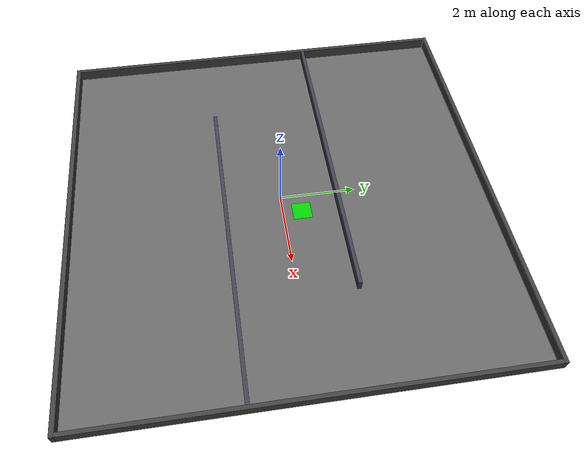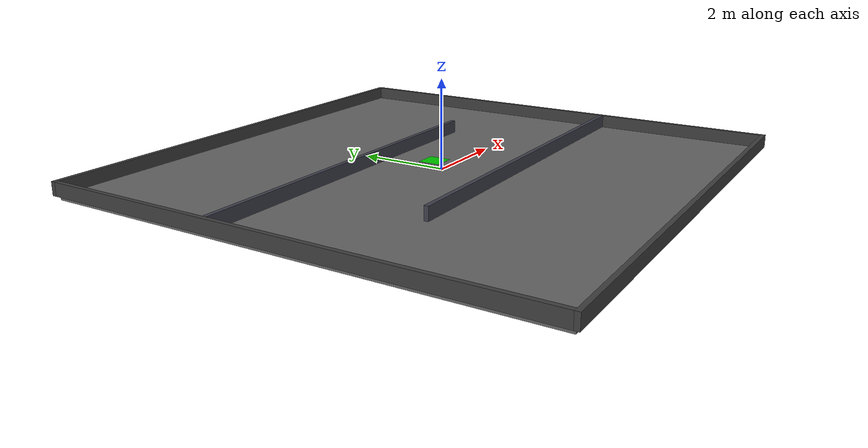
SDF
<?xml version="1.0"?>
<sdf version="1.6">

<world name="field_simplified">

  <!--太阳 平行光-->
  <light name="sun" type="directional">
    <cast_shadows>true</cast_shadows>
    <pose>0 0 10 0 0 0</pose>
    <diffuse>0.8 0.8 0.8 1</diffuse>
    <specular>0.2 0.2 0.2 1</specular>
    <direction>-0.5 0.1 -0.9</direction>
  </light>

  <!--场地地板 11m x 11m 顶面正好在z=0-->
  <model name="field_floor">
    <static>true</static>
    <pose>0 0 -0.05 0 0 0</pose>
    <link name="floor_link">

      <visual name="floor_visual">
        <geometry>
          <box><size>11 11 0.1</size></box>
        </geometry>
        <material>
          <ambient>0.4 0.4 0.4 1</ambient>
          <diffuse>0.4 0.4 0.4 1</diffuse>
        </material>
      </visual>

      <collision name="floor_collision">
        <geometry>
          <box><size>11 11 0.1</size></box>
        </geometry>
      </collision>

    </link>
  </model>

  <!--建造格1 0.5m x 0.5m 绿色标识 只有visual没有collision 机器人可以直接压过-->
  <model name="build_slot_1">
    <static>true</static>
    <pose>0.5 0.5 0.001 0 0 0</pose>
    <link name="slot_link">

      <visual name="slot_visual">
        <geometry>
          <box><size>0.5 0.5 0.002</size></box>
        </geometry>
        <material>
          <ambient>0 0.8 0 1</ambient>
          <diffuse>0 0.8 0 1</diffuse>
        </material>
      </visual>

    </link>
  </model>

  <!--封闭围栏 四面墙 内侧面正好在±5.5 有collision是真实障碍-->
  <model name="field_fence">
    <static>true</static>
    <pose>0 0 0 0 0 0</pose>

    <link name="wall_north_link">
      <pose>0 5.55 0.15 0 0 0</pose>
      <visual name="wall_north_visual">
        <geometry><box><size>11.2 0.1 0.3</size></box></geometry>
        <material>
          <ambient>0.25 0.25 0.25 1</ambient>
          <diffuse>0.25 0.25 0.25 1</diffuse>
        </material>
      </visual>
      <collision name="wall_north_collision">
        <geometry><box><size>11.2 0.1 0.3</size></box></geometry>
      </collision>
    </link>

    <link name="wall_south_link">
      <pose>0 -5.55 0.15 0 0 0</pose>
      <visual name="wall_south_visual">
        <geometry><box><size>11.2 0.1 0.3</size></box></geometry>
        <material>
          <ambient>0.25 0.25 0.25 1</ambient>
          <diffuse>0.25 0.25 0.25 1</diffuse>
        </material>
      </visual>
      <collision name="wall_south_collision">
        <geometry><box><size>11.2 0.1 0.3</size></box></geometry>
      </collision>
    </link>

    <link name="wall_east_link">
      <pose>5.55 0 0.15 0 0 0</pose>
      <visual name="wall_east_visual">
        <geometry><box><size>0.1 11 0.3</size></box></geometry>
        <material>
          <ambient>0.25 0.25 0.25 1</ambient>
          <diffuse>0.25 0.25 0.25 1</diffuse>
        </material>
      </visual>
      <collision name="wall_east_collision">
        <geometry><box><size>0.1 11 0.3</size></box></geometry>
      </collision>
    </link>

    <link name="wall_west_link">
      <pose>-5.55 0 0.15 0 0 0</pose>
      <visual name="wall_west_visual">
        <geometry><box><size>0.1 11 0.3</size></box></geometry>
        <material>
          <ambient>0.25 0.25 0.25 1</ambient>
          <diffuse>0.25 0.25 0.25 1</diffuse>
        </material>
      </visual>
      <collision name="wall_west_collision">
        <geometry><box><size>0.1 11 0.3</size></box></geometry>
      </collision>
    </link>

  </model>

  <!--Z字折线内墙A 缺口朝东 逼机器人右行-->
  <model name="maze_wall_a">
    <static>true</static>
    <pose>-1.25 1.5 0.15 0 0 0</pose>
    <link name="wall_a_link">
      <visual name="wall_a_visual">
        <geometry><box><size>8.5 0.1 0.3</size></box></geometry>
        <material>
          <ambient>0.25 0.25 0.3 1</ambient>
          <diffuse>0.25 0.25 0.3 1</diffuse>
        </material>
      </visual>
      <collision name="wall_a_collision">
        <geometry><box><size>8.5 0.1 0.3</size></box></geometry>
      </collision>
    </link>
  </model>

  <!--Z字折线内墙B 缺口朝西 逼机器人左行-->
  <model name="maze_wall_b">
    <static>true</static>
    <pose>1.25 -1.5 0.15 0 0 0</pose>
    <link name="wall_b_link">
      <visual name="wall_b_visual">
        <geometry><box><size>8.5 0.1 0.3</size></box></geometry>
        <material>
          <ambient>0.25 0.25 0.3 1</ambient>
          <diffuse>0.25 0.25 0.3 1</diffuse>
        </material>
      </visual>
      <collision name="wall_b_collision">
        <geometry><box><size>8.5 0.1 0.3</size></box></geometry>
      </collision>
    </link>
  </model>

</world>

</sdf>
